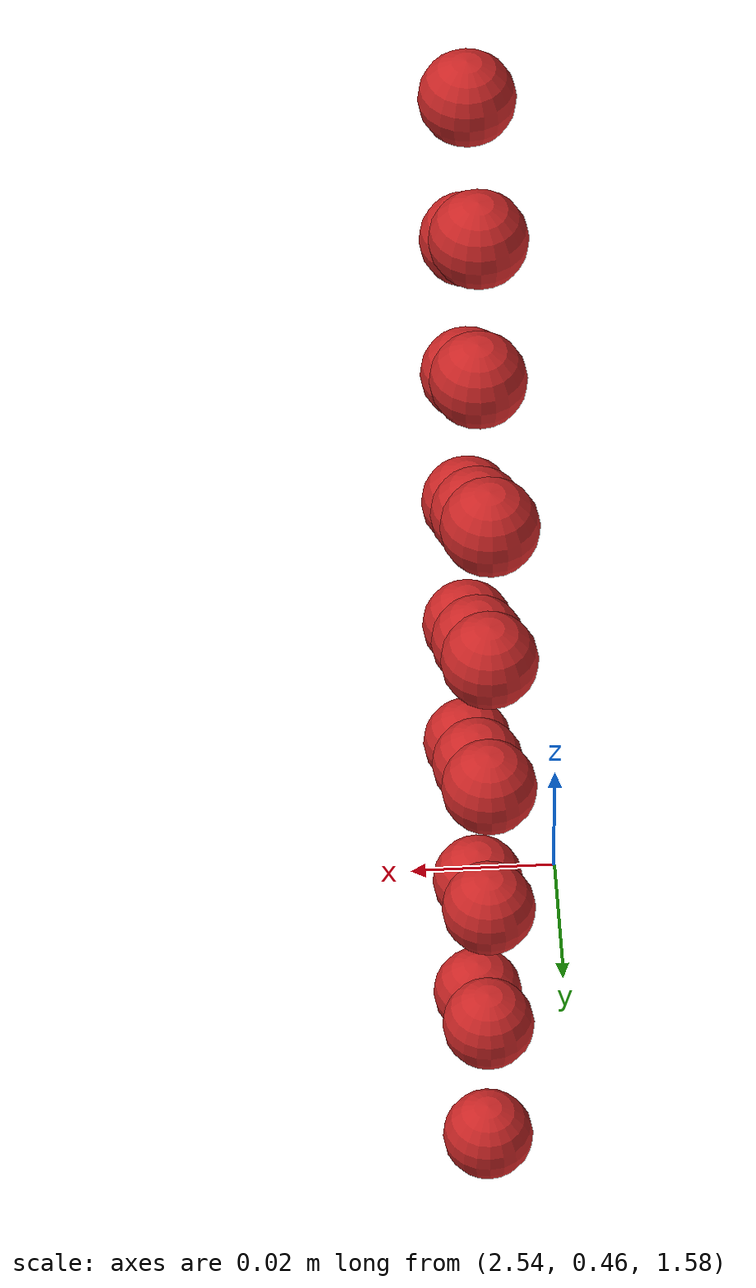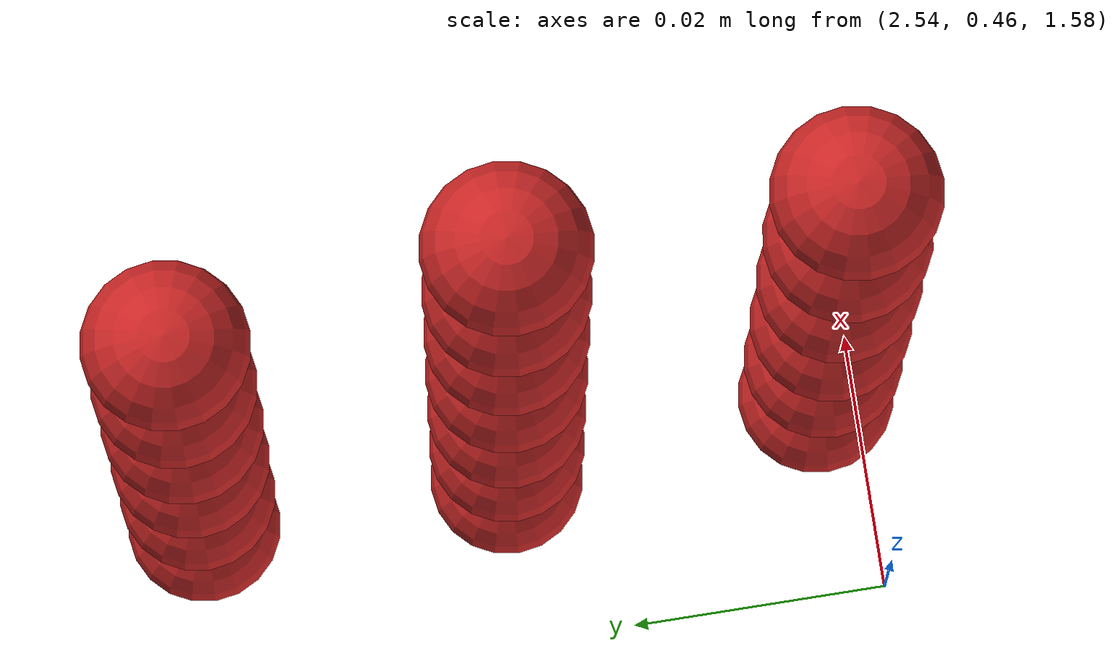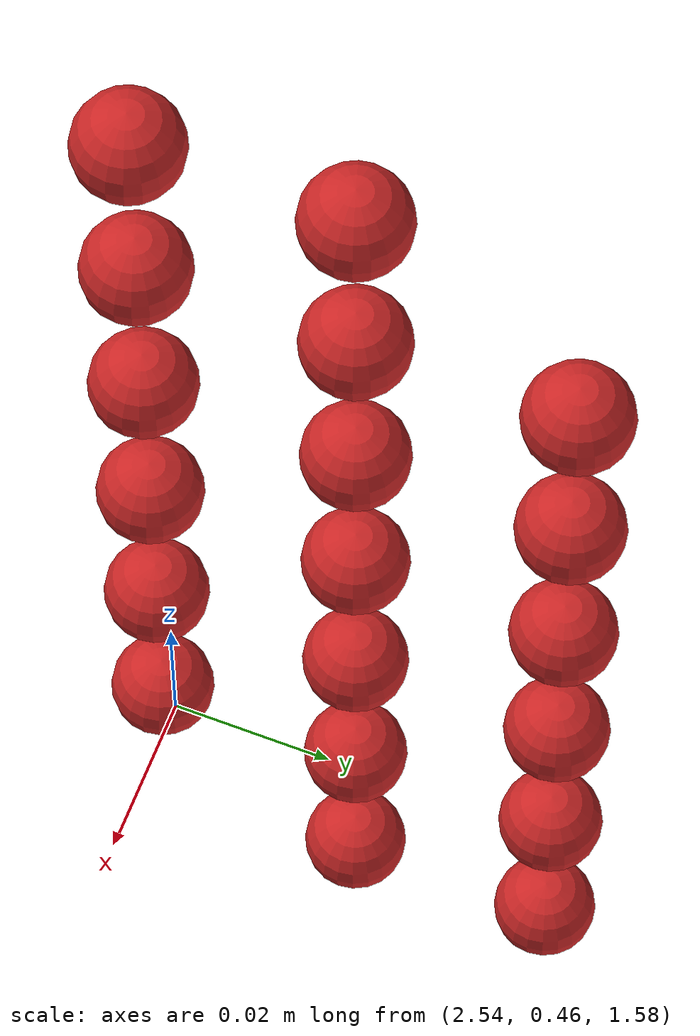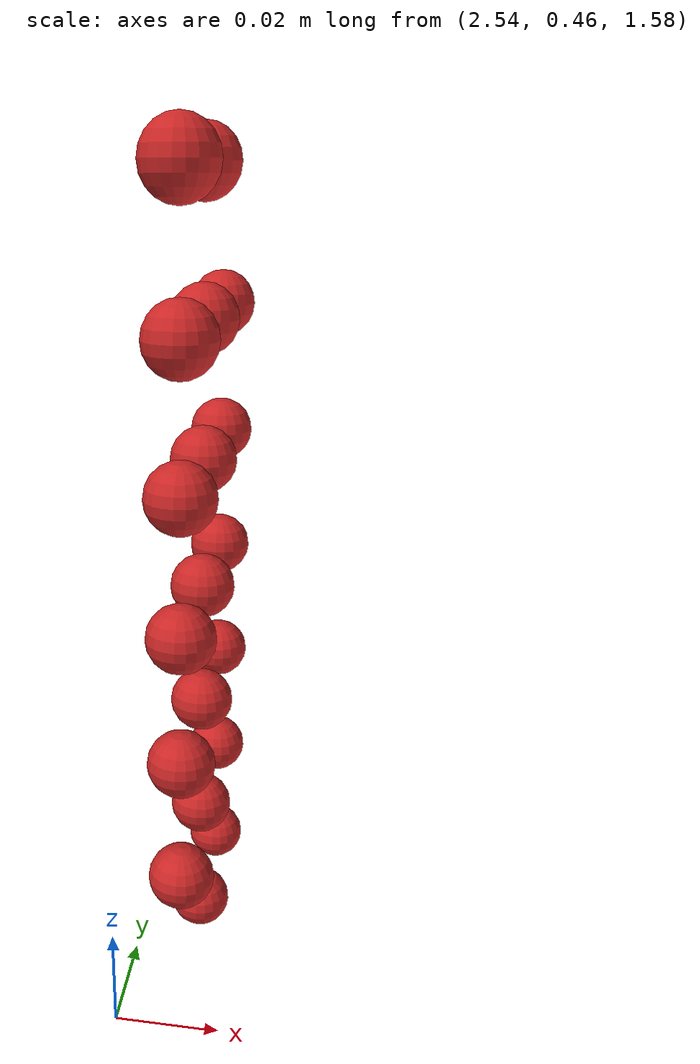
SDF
<sdf version="1.4">
 <world name="default">
  <model name="ground_plane">
   <static>1</static>
   <link name="link">
    <collision name="collision">
     <geometry><plane><normal>0 0 1</normal><size>100 100</size></plane></geometry>
     <surface><friction><ode><mu>100</mu><mu2>50</mu2></ode></friction></surface>
    </collision>
    <visual name="visual">
     <cast_shadows>0</cast_shadows>
     <geometry><plane><normal>0 0 1</normal><size>100 100</size></plane></geometry>
     <material>
      <script><uri>file://media/materials/scripts/gazebo.material</uri><name>Gazebo/Grey</name></script>
     </material>
    </visual>
    <velocity_decay><linear>0</linear><angular>0</angular></velocity_decay>
   </link>
  </model>
  <model name="sphere57">
   <pose>1.276140 0.244149 0.794288 0 0 0</pose>
   <link name="link">
    <pose>1.276140 0.244149 0.794288 0 0 0</pose>
    <inertial>
     <mass>0.001</mass>
     <inertia>
      <ixx>0.004</ixx>
      <ixy>0.000000</ixy>
      <ixz>0.000000</ixz>
      <iyy>0.004</iyy>
      <iyz>0.000000</iyz>
      <izz>0.004</izz>
     </inertia>
    </inertial>
    <collision name="collision">
     <surface>
      <contact><ode><kp>10000000000.000000</kp><kd>1</kd></ode></contact>
      <friction><ode><mu>0.01</mu><mu2>0.01</mu2></ode></friction>
     </surface>
     <geometry><sphere><radius>0.006</radius></sphere></geometry>
    </collision>
    <visual name="visual">
     <geometry><sphere><radius>0.006</radius></sphere></geometry>
     <material>
      <script><uri>file://media/materials/scripts/gazebo.material</uri><name>Gazebo/Red</name></script>
     </material>
    </visual>
   </link>
  </model>
  <model name="sphere60">
   <pose>1.276140 0.256149 0.794288 0 0 0</pose>
   <link name="link">
    <pose>1.276140 0.256149 0.794288 0 0 0</pose>
    <inertial>
     <mass>0.001</mass>
     <inertia>
      <ixx>0.004</ixx>
      <ixy>0.000000</ixy>
      <ixz>0.000000</ixz>
      <iyy>0.004</iyy>
      <iyz>0.000000</iyz>
      <izz>0.004</izz>
     </inertia>
    </inertial>
    <collision name="collision">
     <surface>
      <contact><ode><kp>10000000000.000000</kp><kd>1</kd></ode></contact>
      <friction><ode><mu>0.01</mu><mu2>0.01</mu2></ode></friction>
     </surface>
     <geometry><sphere><radius>0.006</radius></sphere></geometry>
    </collision>
    <visual name="visual">
     <geometry><sphere><radius>0.006</radius></sphere></geometry>
     <material>
      <script><uri>file://media/materials/scripts/gazebo.material</uri><name>Gazebo/Red</name></script>
     </material>
    </visual>
   </link>
  </model>
  <model name="sphere63">
   <pose>1.276140 0.232149 0.806288 0 0 0</pose>
   <link name="link">
    <pose>1.276140 0.232149 0.806288 0 0 0</pose>
    <inertial>
     <mass>0.001</mass>
     <inertia>
      <ixx>0.004</ixx>
      <ixy>0.000000</ixy>
      <ixz>0.000000</ixz>
      <iyy>0.004</iyy>
      <iyz>0.000000</iyz>
      <izz>0.004</izz>
     </inertia>
    </inertial>
    <collision name="collision">
     <surface>
      <contact><ode><kp>10000000000.000000</kp><kd>1</kd></ode></contact>
      <friction><ode><mu>0.01</mu><mu2>0.01</mu2></ode></friction>
     </surface>
     <geometry><sphere><radius>0.006</radius></sphere></geometry>
    </collision>
    <visual name="visual">
     <geometry><sphere><radius>0.006</radius></sphere></geometry>
     <material>
      <script><uri>file://media/materials/scripts/gazebo.material</uri><name>Gazebo/Red</name></script>
     </material>
    </visual>
   </link>
  </model>
  <model name="sphere66">
   <pose>1.276140 0.244149 0.806288 0 0 0</pose>
   <link name="link">
    <pose>1.276140 0.244149 0.806288 0 0 0</pose>
    <inertial>
     <mass>0.001</mass>
     <inertia>
      <ixx>0.004</ixx>
      <ixy>0.000000</ixy>
      <ixz>0.000000</ixz>
      <iyy>0.004</iyy>
      <iyz>0.000000</iyz>
      <izz>0.004</izz>
     </inertia>
    </inertial>
    <collision name="collision">
     <surface>
      <contact><ode><kp>10000000000.000000</kp><kd>1</kd></ode></contact>
      <friction><ode><mu>0.01</mu><mu2>0.01</mu2></ode></friction>
     </surface>
     <geometry><sphere><radius>0.006</radius></sphere></geometry>
    </collision>
    <visual name="visual">
     <geometry><sphere><radius>0.006</radius></sphere></geometry>
     <material>
      <script><uri>file://media/materials/scripts/gazebo.material</uri><name>Gazebo/Red</name></script>
     </material>
    </visual>
   </link>
  </model>
  <model name="sphere69">
   <pose>1.276140 0.256149 0.806288 0 0 0</pose>
   <link name="link">
    <pose>1.276140 0.256149 0.806288 0 0 0</pose>
    <inertial>
     <mass>0.001</mass>
     <inertia>
      <ixx>0.004</ixx>
      <ixy>0.000000</ixy>
      <ixz>0.000000</ixz>
      <iyy>0.004</iyy>
      <iyz>0.000000</iyz>
      <izz>0.004</izz>
     </inertia>
    </inertial>
    <collision name="collision">
     <surface>
      <contact><ode><kp>10000000000.000000</kp><kd>1</kd></ode></contact>
      <friction><ode><mu>0.01</mu><mu2>0.01</mu2></ode></friction>
     </surface>
     <geometry><sphere><radius>0.006</radius></sphere></geometry>
    </collision>
    <visual name="visual">
     <geometry><sphere><radius>0.006</radius></sphere></geometry>
     <material>
      <script><uri>file://media/materials/scripts/gazebo.material</uri><name>Gazebo/Red</name></script>
     </material>
    </visual>
   </link>
  </model>
  <model name="sphere72">
   <pose>1.276140 0.232149 0.818288 0 0 0</pose>
   <link name="link">
    <pose>1.276140 0.232149 0.818288 0 0 0</pose>
    <inertial>
     <mass>0.001</mass>
     <inertia>
      <ixx>0.004</ixx>
      <ixy>0.000000</ixy>
      <ixz>0.000000</ixz>
      <iyy>0.004</iyy>
      <iyz>0.000000</iyz>
      <izz>0.004</izz>
     </inertia>
    </inertial>
    <collision name="collision">
     <surface>
      <contact><ode><kp>10000000000.000000</kp><kd>1</kd></ode></contact>
      <friction><ode><mu>0.01</mu><mu2>0.01</mu2></ode></friction>
     </surface>
     <geometry><sphere><radius>0.006</radius></sphere></geometry>
    </collision>
    <visual name="visual">
     <geometry><sphere><radius>0.006</radius></sphere></geometry>
     <material>
      <script><uri>file://media/materials/scripts/gazebo.material</uri><name>Gazebo/Red</name></script>
     </material>
    </visual>
   </link>
  </model>
  <model name="sphere75">
   <pose>1.276140 0.244149 0.818288 0 0 0</pose>
   <link name="link">
    <pose>1.276140 0.244149 0.818288 0 0 0</pose>
    <inertial>
     <mass>0.001</mass>
     <inertia>
      <ixx>0.004</ixx>
      <ixy>0.000000</ixy>
      <ixz>0.000000</ixz>
      <iyy>0.004</iyy>
      <iyz>0.000000</iyz>
      <izz>0.004</izz>
     </inertia>
    </inertial>
    <collision name="collision">
     <surface>
      <contact><ode><kp>10000000000.000000</kp><kd>1</kd></ode></contact>
      <friction><ode><mu>0.01</mu><mu2>0.01</mu2></ode></friction>
     </surface>
     <geometry><sphere><radius>0.006</radius></sphere></geometry>
    </collision>
    <visual name="visual">
     <geometry><sphere><radius>0.006</radius></sphere></geometry>
     <material>
      <script><uri>file://media/materials/scripts/gazebo.material</uri><name>Gazebo/Red</name></script>
     </material>
    </visual>
   </link>
  </model>
  <model name="sphere78">
   <pose>1.276140 0.256149 0.818288 0 0 0</pose>
   <link name="link">
    <pose>1.276140 0.256149 0.818288 0 0 0</pose>
    <inertial>
     <mass>0.001</mass>
     <inertia>
      <ixx>0.004</ixx>
      <ixy>0.000000</ixy>
      <ixz>0.000000</ixz>
      <iyy>0.004</iyy>
      <iyz>0.000000</iyz>
      <izz>0.004</izz>
     </inertia>
    </inertial>
    <collision name="collision">
     <surface>
      <contact><ode><kp>10000000000.000000</kp><kd>1</kd></ode></contact>
      <friction><ode><mu>0.01</mu><mu2>0.01</mu2></ode></friction>
     </surface>
     <geometry><sphere><radius>0.006</radius></sphere></geometry>
    </collision>
    <visual name="visual">
     <geometry><sphere><radius>0.006</radius></sphere></geometry>
     <material>
      <script><uri>file://media/materials/scripts/gazebo.material</uri><name>Gazebo/Red</name></script>
     </material>
    </visual>
   </link>
  </model>
  <model name="sphere81">
   <pose>1.276140 0.232149 0.830288 0 0 0</pose>
   <link name="link">
    <pose>1.276140 0.232149 0.830288 0 0 0</pose>
    <inertial>
     <mass>0.001</mass>
     <inertia>
      <ixx>0.004</ixx>
      <ixy>0.000000</ixy>
      <ixz>0.000000</ixz>
      <iyy>0.004</iyy>
      <iyz>0.000000</iyz>
      <izz>0.004</izz>
     </inertia>
    </inertial>
    <collision name="collision">
     <surface>
      <contact><ode><kp>10000000000.000000</kp><kd>1</kd></ode></contact>
      <friction><ode><mu>0.01</mu><mu2>0.01</mu2></ode></friction>
     </surface>
     <geometry><sphere><radius>0.006</radius></sphere></geometry>
    </collision>
    <visual name="visual">
     <geometry><sphere><radius>0.006</radius></sphere></geometry>
     <material>
      <script><uri>file://media/materials/scripts/gazebo.material</uri><name>Gazebo/Red</name></script>
     </material>
    </visual>
   </link>
  </model>
  <model name="sphere84">
   <pose>1.276140 0.244149 0.830288 0 0 0</pose>
   <link name="link">
    <pose>1.276140 0.244149 0.830288 0 0 0</pose>
    <inertial>
     <mass>0.001</mass>
     <inertia>
      <ixx>0.004</ixx>
      <ixy>0.000000</ixy>
      <ixz>0.000000</ixz>
      <iyy>0.004</iyy>
      <iyz>0.000000</iyz>
      <izz>0.004</izz>
     </inertia>
    </inertial>
    <collision name="collision">
     <surface>
      <contact><ode><kp>10000000000.000000</kp><kd>1</kd></ode></contact>
      <friction><ode><mu>0.01</mu><mu2>0.01</mu2></ode></friction>
     </surface>
     <geometry><sphere><radius>0.006</radius></sphere></geometry>
    </collision>
    <visual name="visual">
     <geometry><sphere><radius>0.006</radius></sphere></geometry>
     <material>
      <script><uri>file://media/materials/scripts/gazebo.material</uri><name>Gazebo/Red</name></script>
     </material>
    </visual>
   </link>
  </model>
  <model name="sphere87">
   <pose>1.276140 0.256149 0.830288 0 0 0</pose>
   <link name="link">
    <pose>1.276140 0.256149 0.830288 0 0 0</pose>
    <inertial>
     <mass>0.001</mass>
     <inertia>
      <ixx>0.004</ixx>
      <ixy>0.000000</ixy>
      <ixz>0.000000</ixz>
      <iyy>0.004</iyy>
      <iyz>0.000000</iyz>
      <izz>0.004</izz>
     </inertia>
    </inertial>
    <collision name="collision">
     <surface>
      <contact><ode><kp>10000000000.000000</kp><kd>1</kd></ode></contact>
      <friction><ode><mu>0.01</mu><mu2>0.01</mu2></ode></friction>
     </surface>
     <geometry><sphere><radius>0.006</radius></sphere></geometry>
    </collision>
    <visual name="visual">
     <geometry><sphere><radius>0.006</radius></sphere></geometry>
     <material>
      <script><uri>file://media/materials/scripts/gazebo.material</uri><name>Gazebo/Red</name></script>
     </material>
    </visual>
   </link>
  </model>
  <model name="sphere90">
   <pose>1.276140 0.232149 0.842288 0 0 0</pose>
   <link name="link">
    <pose>1.276140 0.232149 0.842288 0 0 0</pose>
    <inertial>
     <mass>0.001</mass>
     <inertia>
      <ixx>0.004</ixx>
      <ixy>0.000000</ixy>
      <ixz>0.000000</ixz>
      <iyy>0.004</iyy>
      <iyz>0.000000</iyz>
      <izz>0.004</izz>
     </inertia>
    </inertial>
    <collision name="collision">
     <surface>
      <contact><ode><kp>10000000000.000000</kp><kd>1</kd></ode></contact>
      <friction><ode><mu>0.01</mu><mu2>0.01</mu2></ode></friction>
     </surface>
     <geometry><sphere><radius>0.006</radius></sphere></geometry>
    </collision>
    <visual name="visual">
     <geometry><sphere><radius>0.006</radius></sphere></geometry>
     <material>
      <script><uri>file://media/materials/scripts/gazebo.material</uri><name>Gazebo/Red</name></script>
     </material>
    </visual>
   </link>
  </model>
  <model name="sphere93">
   <pose>1.276140 0.244149 0.842288 0 0 0</pose>
   <link name="link">
    <pose>1.276140 0.244149 0.842288 0 0 0</pose>
    <inertial>
     <mass>0.001</mass>
     <inertia>
      <ixx>0.004</ixx>
      <ixy>0.000000</ixy>
      <ixz>0.000000</ixz>
      <iyy>0.004</iyy>
      <iyz>0.000000</iyz>
      <izz>0.004</izz>
     </inertia>
    </inertial>
    <collision name="collision">
     <surface>
      <contact><ode><kp>10000000000.000000</kp><kd>1</kd></ode></contact>
      <friction><ode><mu>0.01</mu><mu2>0.01</mu2></ode></friction>
     </surface>
     <geometry><sphere><radius>0.006</radius></sphere></geometry>
    </collision>
    <visual name="visual">
     <geometry><sphere><radius>0.006</radius></sphere></geometry>
     <material>
      <script><uri>file://media/materials/scripts/gazebo.material</uri><name>Gazebo/Red</name></script>
     </material>
    </visual>
   </link>
  </model>
  <model name="sphere96">
   <pose>1.276140 0.256149 0.842288 0 0 0</pose>
   <link name="link">
    <pose>1.276140 0.256149 0.842288 0 0 0</pose>
    <inertial>
     <mass>0.001</mass>
     <inertia>
      <ixx>0.004</ixx>
      <ixy>0.000000</ixy>
      <ixz>0.000000</ixz>
      <iyy>0.004</iyy>
      <iyz>0.000000</iyz>
      <izz>0.004</izz>
     </inertia>
    </inertial>
    <collision name="collision">
     <surface>
      <contact><ode><kp>10000000000.000000</kp><kd>1</kd></ode></contact>
      <friction><ode><mu>0.01</mu><mu2>0.01</mu2></ode></friction>
     </surface>
     <geometry><sphere><radius>0.006</radius></sphere></geometry>
    </collision>
    <visual name="visual">
     <geometry><sphere><radius>0.006</radius></sphere></geometry>
     <material>
      <script><uri>file://media/materials/scripts/gazebo.material</uri><name>Gazebo/Red</name></script>
     </material>
    </visual>
   </link>
  </model>
  <model name="sphere99">
   <pose>1.276140 0.232149 0.854288 0 0 0</pose>
   <link name="link">
    <pose>1.276140 0.232149 0.854288 0 0 0</pose>
    <inertial>
     <mass>0.001</mass>
     <inertia>
      <ixx>0.004</ixx>
      <ixy>0.000000</ixy>
      <ixz>0.000000</ixz>
      <iyy>0.004</iyy>
      <iyz>0.000000</iyz>
      <izz>0.004</izz>
     </inertia>
    </inertial>
    <collision name="collision">
     <surface>
      <contact><ode><kp>10000000000.000000</kp><kd>1</kd></ode></contact>
      <friction><ode><mu>0.01</mu><mu2>0.01</mu2></ode></friction>
     </surface>
     <geometry><sphere><radius>0.006</radius></sphere></geometry>
    </collision>
    <visual name="visual">
     <geometry><sphere><radius>0.006</radius></sphere></geometry>
     <material>
      <script><uri>file://media/materials/scripts/gazebo.material</uri><name>Gazebo/Red</name></script>
     </material>
    </visual>
   </link>
  </model>
  <model name="sphere102">
   <pose>1.276140 0.244149 0.854288 0 0 0</pose>
   <link name="link">
    <pose>1.276140 0.244149 0.854288 0 0 0</pose>
    <inertial>
     <mass>0.001</mass>
     <inertia>
      <ixx>0.004</ixx>
      <ixy>0.000000</ixy>
      <ixz>0.000000</ixz>
      <iyy>0.004</iyy>
      <iyz>0.000000</iyz>
      <izz>0.004</izz>
     </inertia>
    </inertial>
    <collision name="collision">
     <surface>
      <contact><ode><kp>10000000000.000000</kp><kd>1</kd></ode></contact>
      <friction><ode><mu>0.01</mu><mu2>0.01</mu2></ode></friction>
     </surface>
     <geometry><sphere><radius>0.006</radius></sphere></geometry>
    </collision>
    <visual name="visual">
     <geometry><sphere><radius>0.006</radius></sphere></geometry>
     <material>
      <script><uri>file://media/materials/scripts/gazebo.material</uri><name>Gazebo/Red</name></script>
     </material>
    </visual>
   </link>
  </model>
  <model name="sphere105">
   <pose>1.276140 0.256149 0.854288 0 0 0</pose>
   <link name="link">
    <pose>1.276140 0.256149 0.854288 0 0 0</pose>
    <inertial>
     <mass>0.001</mass>
     <inertia>
      <ixx>0.004</ixx>
      <ixy>0.000000</ixy>
      <ixz>0.000000</ixz>
      <iyy>0.004</iyy>
      <iyz>0.000000</iyz>
      <izz>0.004</izz>
     </inertia>
    </inertial>
    <collision name="collision">
     <surface>
      <contact><ode><kp>10000000000.000000</kp><kd>1</kd></ode></contact>
      <friction><ode><mu>0.01</mu><mu2>0.01</mu2></ode></friction>
     </surface>
     <geometry><sphere><radius>0.006</radius></sphere></geometry>
    </collision>
    <visual name="visual">
     <geometry><sphere><radius>0.006</radius></sphere></geometry>
     <material>
      <script><uri>file://media/materials/scripts/gazebo.material</uri><name>Gazebo/Red</name></script>
     </material>
    </visual>
   </link>
  </model>
  <model name="sphere108">
   <pose>1.276140 0.232149 0.866288 0 0 0</pose>
   <link name="link">
    <pose>1.276140 0.232149 0.866288 0 0 0</pose>
    <inertial>
     <mass>0.001</mass>
     <inertia>
      <ixx>0.004</ixx>
      <ixy>0.000000</ixy>
      <ixz>0.000000</ixz>
      <iyy>0.004</iyy>
      <iyz>0.000000</iyz>
      <izz>0.004</izz>
     </inertia>
    </inertial>
    <collision name="collision">
     <surface>
      <contact><ode><kp>10000000000.000000</kp><kd>1</kd></ode></contact>
      <friction><ode><mu>0.01</mu><mu2>0.01</mu2></ode></friction>
     </surface>
     <geometry><sphere><radius>0.006</radius></sphere></geometry>
    </collision>
    <visual name="visual">
     <geometry><sphere><radius>0.006</radius></sphere></geometry>
     <material>
      <script><uri>file://media/materials/scripts/gazebo.material</uri><name>Gazebo/Red</name></script>
     </material>
    </visual>
   </link>
  </model>
  <model name="sphere111">
   <pose>1.276140 0.244149 0.866288 0 0 0</pose>
   <link name="link">
    <pose>1.276140 0.244149 0.866288 0 0 0</pose>
    <inertial>
     <mass>0.001</mass>
     <inertia>
      <ixx>0.004</ixx>
      <ixy>0.000000</ixy>
      <ixz>0.000000</ixz>
      <iyy>0.004</iyy>
      <iyz>0.000000</iyz>
      <izz>0.004</izz>
     </inertia>
    </inertial>
    <collision name="collision">
     <surface>
      <contact><ode><kp>10000000000.000000</kp><kd>1</kd></ode></contact>
      <friction><ode><mu>0.01</mu><mu2>0.01</mu2></ode></friction>
     </surface>
     <geometry><sphere><radius>0.006</radius></sphere></geometry>
    </collision>
    <visual name="visual">
     <geometry><sphere><radius>0.006</radius></sphere></geometry>
     <material>
      <script><uri>file://media/materials/scripts/gazebo.material</uri><name>Gazebo/Red</name></script>
     </material>
    </visual>
   </link>
  </model>
 </world>
</sdf>
